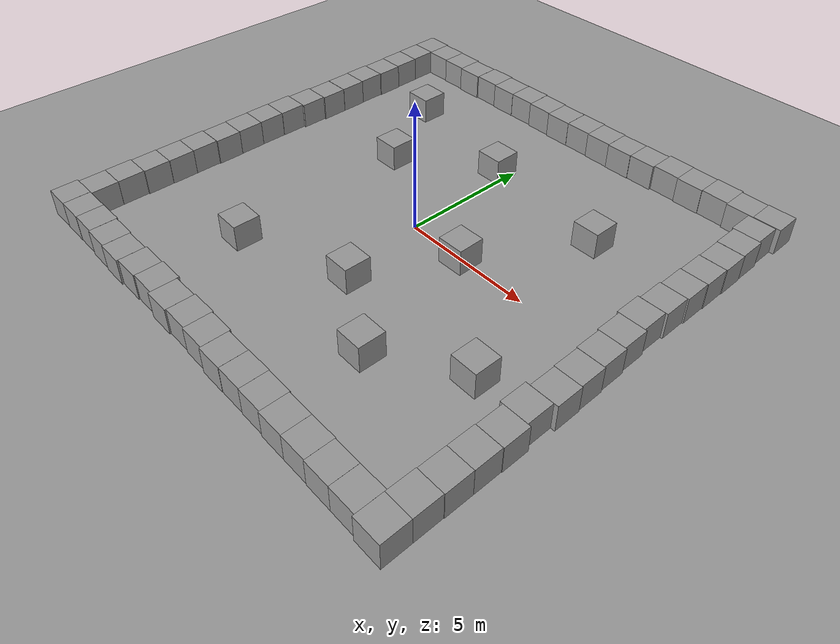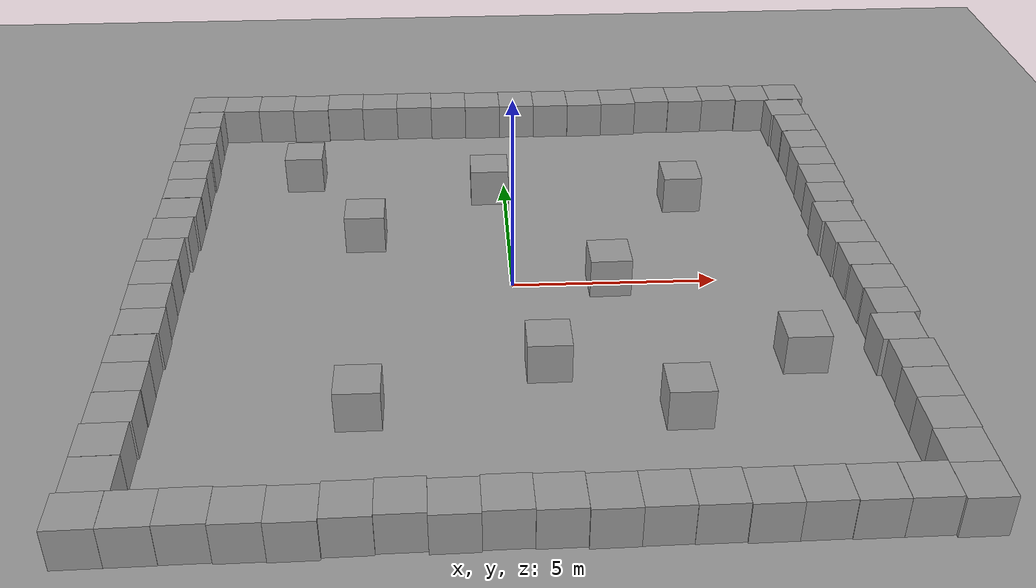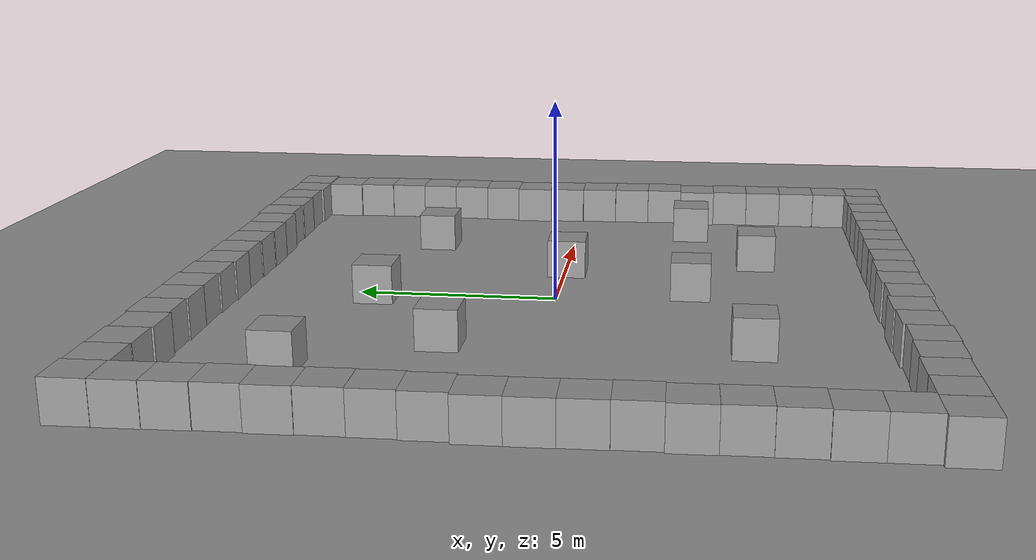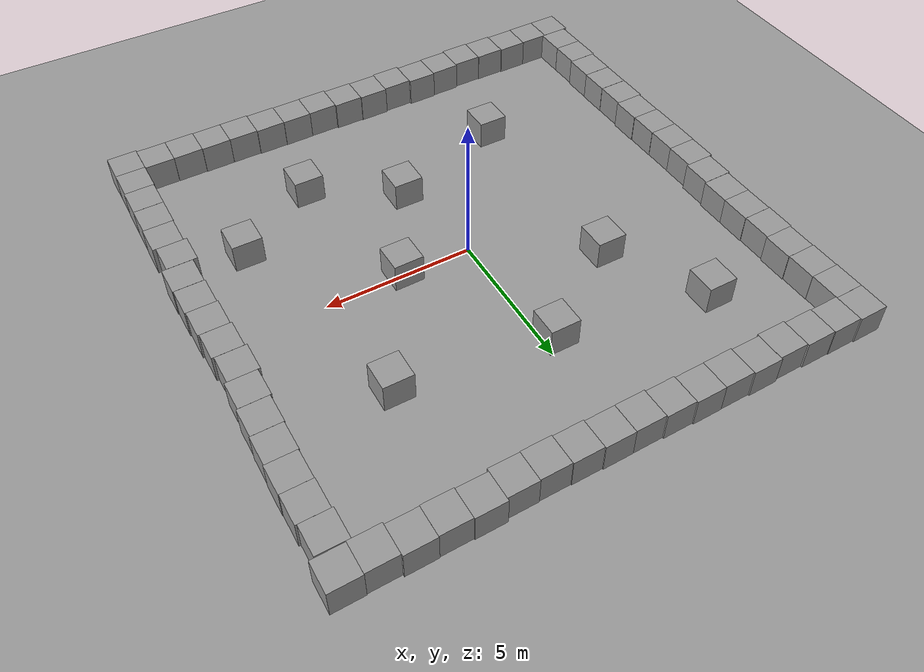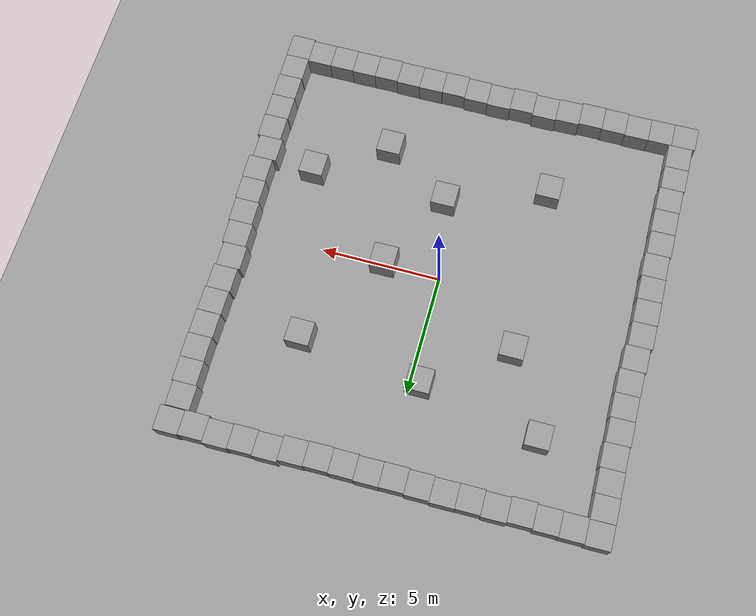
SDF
<sdf version="1.6">
 <world name="default">
  <light name="sun" type="directional">
   <pose>0 0 10 0 -0 0</pose>
   <diffuse>0.8 0.8 0.8 1</diffuse>
   <specular>0.2 0.2 0.2 1</specular>
   <attenuation>
    <range>1000</range>
    <constant>0.9</constant>
    <linear>0.01</linear>
    <quadratic>0.001</quadratic>
   </attenuation>
   <direction>0.5 0.1 -0.9</direction>
  </light>
  <scene><ambient>0.4 0.4 0.4 1</ambient><background>0.7 0.7 0.7 1</background><shadows>1</shadows></scene>
  <physics name="default_physics" default="0" type="ode">
   <max_step_size>0.01</max_step_size>
   <real_time_factor>1</real_time_factor>
   <real_time_update_rate>100</real_time_update_rate>
  </physics>
  <model name="ground_plane_0">
   <static>1</static>
   <link name="link">
    <collision name="collision">
     <geometry><plane><normal>0 0 1</normal><size>100 100</size></plane></geometry>
     <surface><friction><ode><mu>100</mu><mu2>50</mu2></ode></friction></surface>
    </collision>
    <visual name="visual">
     <cast_shadows>0</cast_shadows>
     <geometry><plane><normal>0 0 1</normal><size>100 100</size></plane></geometry>
     <material>
      <script><uri>file://media/materials/scripts/gazebo.material</uri><name>Gazebo/Grey</name></script>
     </material>
    </visual>
    <velocity_decay><linear>0</linear><angular>0</angular></velocity_decay>
   </link>
   <pose>0.497681 0 0 0 -0 0</pose>
  </model>
  <gravity>0 0 -9.8</gravity>
  <magnetic_field>6e-06 2.3e-05 -4.2e-05</magnetic_field>
  <atmosphere type="adiabatic"/>
  <spherical_coordinates>
   <surface_model>EARTH_WGS84</surface_model>
   <latitude_deg>0</latitude_deg>
   <longitude_deg>0</longitude_deg>
   <elevation>0</elevation>
   <heading_deg>0</heading_deg>
  </spherical_coordinates>
  <model name="unit_box">
   <pose>-3.65477 2.22328 0.499798 -0.000404 1e-06 2e-06</pose>
   <link name="link">
    <inertial>
     <mass>1</mass>
     <inertia>
      <ixx>0.166667</ixx>
      <ixy>0</ixy>
      <ixz>0</ixz>
      <iyy>0.166667</iyy>
      <iyz>0</iyz>
      <izz>0.166667</izz>
     </inertia>
    </inertial>
    <collision name="collision"><geometry><box><size>1 1 1</size></box></geometry></collision>
    <visual name="visual">
     <geometry><box><size>1 1 1</size></box></geometry>
     <material>
      <script><name>Gazebo/Grey</name><uri>file://media/materials/scripts/gazebo.material</uri></script>
     </material>
    </visual>
   </link>
  </model>
  <model name="unit_box_0">
   <pose>-3.49029 -4.82705 0.499798 -0.000404 1e-06 3e-06</pose>
   <link name="link">
    <inertial>
     <mass>1</mass>
     <inertia>
      <ixx>0.166667</ixx>
      <ixy>0</ixy>
      <ixz>0</ixz>
      <iyy>0.166667</iyy>
      <iyz>0</iyz>
      <izz>0.166667</izz>
     </inertia>
    </inertial>
    <collision name="collision"><geometry><box><size>1 1 1</size></box></geometry></collision>
    <visual name="visual">
     <geometry><box><size>1 1 1</size></box></geometry>
     <material>
      <script><name>Gazebo/Grey</name><uri>file://media/materials/scripts/gazebo.material</uri></script>
     </material>
    </visual>
   </link>
  </model>
  <model name="unit_box_1">
   <pose>4.69311 3.85443 0.499798 -0.000404 1e-06 3e-06</pose>
   <link name="link">
    <inertial>
     <mass>1</mass>
     <inertia>
      <ixx>0.166667</ixx>
      <ixy>0</ixy>
      <ixz>0</ixz>
      <iyy>0.166667</iyy>
      <iyz>0</iyz>
      <izz>0.166667</izz>
     </inertia>
    </inertial>
    <collision name="collision"><geometry><box><size>1 1 1</size></box></geometry></collision>
    <visual name="visual">
     <geometry><box><size>1 1 1</size></box></geometry>
     <material>
      <script><name>Gazebo/Grey</name><uri>file://media/materials/scripts/gazebo.material</uri></script>
     </material>
    </visual>
   </link>
  </model>
  <model name="unit_box_2">
   <pose>6.34 -3.32422 0.499798 -0.000404 1e-06 3e-06</pose>
   <link name="link">
    <inertial>
     <mass>1</mass>
     <inertia>
      <ixx>0.166667</ixx>
      <ixy>0</ixy>
      <ixz>0</ixz>
      <iyy>0.166667</iyy>
      <iyz>0</iyz>
      <izz>0.166667</izz>
     </inertia>
    </inertial>
    <collision name="collision"><geometry><box><size>1 1 1</size></box></geometry></collision>
    <visual name="visual">
     <geometry><box><size>1 1 1</size></box></geometry>
     <material>
      <script><name>Gazebo/Grey</name><uri>file://media/materials/scripts/gazebo.material</uri></script>
     </material>
    </visual>
   </link>
  </model>
  <model name="unit_box_3">
   <pose>-8.50373 8.5135 0.5 0 -0 0.012994</pose>
   <link name="link">
    <inertial>
     <mass>1</mass>
     <inertia>
      <ixx>0.166667</ixx>
      <ixy>0</ixy>
      <ixz>0</ixz>
      <iyy>0.166667</iyy>
      <iyz>0</iyz>
      <izz>0.166667</izz>
     </inertia>
    </inertial>
    <collision name="collision"><geometry><box><size>1 1 1</size></box></geometry></collision>
    <visual name="visual">
     <geometry><box><size>1 1 1</size></box></geometry>
     <material>
      <script><name>Gazebo/Grey</name><uri>file://media/materials/scripts/gazebo.material</uri></script>
     </material>
    </visual>
   </link>
  </model>
  <model name="unit_box_4">
   <pose>-8.4892 7.51155 0.49902 0 -0 0.016327</pose>
   <link name="link">
    <inertial>
     <mass>1</mass>
     <inertia>
      <ixx>0.166667</ixx>
      <ixy>0</ixy>
      <ixz>0</ixz>
      <iyy>0.166667</iyy>
      <iyz>0</iyz>
      <izz>0.166667</izz>
     </inertia>
    </inertial>
    <collision name="collision"><geometry><box><size>1 1 1</size></box></geometry></collision>
    <visual name="visual">
     <geometry><box><size>1 1 1</size></box></geometry>
     <material>
      <script><name>Gazebo/Grey</name><uri>file://media/materials/scripts/gazebo.material</uri></script>
     </material>
    </visual>
   </link>
  </model>
  <model name="unit_box_5">
   <pose>-8.46021 6.51163 0.49907 -0 -0.0001 0.015862</pose>
   <link name="link">
    <inertial>
     <mass>1</mass>
     <inertia>
      <ixx>0.166667</ixx>
      <ixy>0</ixy>
      <ixz>0</ixz>
      <iyy>0.166667</iyy>
      <iyz>0</iyz>
      <izz>0.166667</izz>
     </inertia>
    </inertial>
    <collision name="collision"><geometry><box><size>1 1 1</size></box></geometry></collision>
    <visual name="visual">
     <geometry><box><size>1 1 1</size></box></geometry>
     <material>
      <script><name>Gazebo/Grey</name><uri>file://media/materials/scripts/gazebo.material</uri></script>
     </material>
    </visual>
   </link>
  </model>
  <model name="unit_box_6">
   <pose>-8.41959 5.5117 0.49967 0 -0.00066 0.016763</pose>
   <link name="link">
    <inertial>
     <mass>1</mass>
     <inertia>
      <ixx>0.166667</ixx>
      <ixy>0</ixy>
      <ixz>0</ixz>
      <iyy>0.166667</iyy>
      <iyz>0</iyz>
      <izz>0.166667</izz>
     </inertia>
    </inertial>
    <collision name="collision"><geometry><box><size>1 1 1</size></box></geometry></collision>
    <visual name="visual">
     <geometry><box><size>1 1 1</size></box></geometry>
     <material>
      <script><name>Gazebo/Grey</name><uri>file://media/materials/scripts/gazebo.material</uri></script>
     </material>
    </visual>
   </link>
  </model>
  <model name="unit_box_6_clone">
   <pose>-8.43879 4.51123 0.49907 0 0.0001 0.016757</pose>
   <link name="link">
    <inertial>
     <mass>1</mass>
     <inertia>
      <ixx>0.166667</ixx>
      <ixy>0</ixy>
      <ixz>0</ixz>
      <iyy>0.166667</iyy>
      <iyz>0</iyz>
      <izz>0.166667</izz>
     </inertia>
    </inertial>
    <collision name="collision"><geometry><box><size>1 1 1</size></box></geometry></collision>
    <visual name="visual">
     <geometry><box><size>1 1 1</size></box></geometry>
     <material>
      <script><name>Gazebo/Grey</name><uri>file://media/materials/scripts/gazebo.material</uri></script>
     </material>
    </visual>
   </link>
  </model>
  <model name="unit_box_6_clone_0">
   <pose>-8.40418 3.51116 0.5 0 -0 0.016663</pose>
   <link name="link">
    <inertial>
     <mass>1</mass>
     <inertia>
      <ixx>0.166667</ixx>
      <ixy>0</ixy>
      <ixz>0</ixz>
      <iyy>0.166667</iyy>
      <iyz>0</iyz>
      <izz>0.166667</izz>
     </inertia>
    </inertial>
    <collision name="collision"><geometry><box><size>1 1 1</size></box></geometry></collision>
    <visual name="visual">
     <geometry><box><size>1 1 1</size></box></geometry>
     <material>
      <script><name>Gazebo/Grey</name><uri>file://media/materials/scripts/gazebo.material</uri></script>
     </material>
    </visual>
   </link>
  </model>
  <model name="unit_box_6_clone_1">
   <pose>-8.39566 2.51115 0.49477 -0 -0.00066 0.016663</pose>
   <link name="link">
    <inertial>
     <mass>1</mass>
     <inertia>
      <ixx>0.166667</ixx>
      <ixy>0</ixy>
      <ixz>0</ixz>
      <iyy>0.166667</iyy>
      <iyz>0</iyz>
      <izz>0.166667</izz>
     </inertia>
    </inertial>
    <collision name="collision"><geometry><box><size>1 1 1</size></box></geometry></collision>
    <visual name="visual">
     <geometry><box><size>1 1 1</size></box></geometry>
     <material>
      <script><name>Gazebo/Grey</name><uri>file://media/materials/scripts/gazebo.material</uri></script>
     </material>
    </visual>
   </link>
  </model>
  <model name="unit_box_6_clone_2">
   <pose>-8.43005 1.51012 0.49912 0 -0 0.016926</pose>
   <link name="link">
    <inertial>
     <mass>1</mass>
     <inertia>
      <ixx>0.166667</ixx>
      <ixy>0</ixy>
      <ixz>0</ixz>
      <iyy>0.166667</iyy>
      <iyz>0</iyz>
      <izz>0.166667</izz>
     </inertia>
    </inertial>
    <collision name="collision"><geometry><box><size>1 1 1</size></box></geometry></collision>
    <visual name="visual">
     <geometry><box><size>1 1 1</size></box></geometry>
     <material>
      <script><name>Gazebo/Grey</name><uri>file://media/materials/scripts/gazebo.material</uri></script>
     </material>
    </visual>
   </link>
  </model>
  <model name="unit_box_6_clone_3">
   <pose>-8.49539 0.508843 0.49912 0 -0 0.016941</pose>
   <link name="link">
    <inertial>
     <mass>1</mass>
     <inertia>
      <ixx>0.166667</ixx>
      <ixy>0</ixy>
      <ixz>0</ixz>
      <iyy>0.166667</iyy>
      <iyz>0</iyz>
      <izz>0.166667</izz>
     </inertia>
    </inertial>
    <collision name="collision"><geometry><box><size>1 1 1</size></box></geometry></collision>
    <visual name="visual">
     <geometry><box><size>1 1 1</size></box></geometry>
     <material>
      <script><name>Gazebo/Grey</name><uri>file://media/materials/scripts/gazebo.material</uri></script>
     </material>
    </visual>
   </link>
  </model>
  <model name="unit_box_6_clone_4">
   <pose>-8.48774 -0.49148 0.49912 0 -0 0.017428</pose>
   <link name="link">
    <inertial>
     <mass>1</mass>
     <inertia>
      <ixx>0.166667</ixx>
      <ixy>0</ixy>
      <ixz>0</ixz>
      <iyy>0.166667</iyy>
      <iyz>0</iyz>
      <izz>0.166667</izz>
     </inertia>
    </inertial>
    <collision name="collision"><geometry><box><size>1 1 1</size></box></geometry></collision>
    <visual name="visual">
     <geometry><box><size>1 1 1</size></box></geometry>
     <material>
      <script><name>Gazebo/Grey</name><uri>file://media/materials/scripts/gazebo.material</uri></script>
     </material>
    </visual>
   </link>
  </model>
  <model name="unit_box_6_clone_5">
   <pose>-8.45919 -1.49116 0.49912 0 -0 0.017447</pose>
   <link name="link">
    <inertial>
     <mass>1</mass>
     <inertia>
      <ixx>0.166667</ixx>
      <ixy>0</ixy>
      <ixz>0</ixz>
      <iyy>0.166667</iyy>
      <iyz>0</iyz>
      <izz>0.166667</izz>
     </inertia>
    </inertial>
    <collision name="collision"><geometry><box><size>1 1 1</size></box></geometry></collision>
    <visual name="visual">
     <geometry><box><size>1 1 1</size></box></geometry>
     <material>
      <script><name>Gazebo/Grey</name><uri>file://media/materials/scripts/gazebo.material</uri></script>
     </material>
    </visual>
   </link>
  </model>
  <model name="unit_box_6_clone_6">
   <pose>-8.42461 -2.49077 0.49912 0 -0 0.017527</pose>
   <link name="link">
    <inertial>
     <mass>1</mass>
     <inertia>
      <ixx>0.166667</ixx>
      <ixy>0</ixy>
      <ixz>0</ixz>
      <iyy>0.166667</iyy>
      <iyz>0</iyz>
      <izz>0.166667</izz>
     </inertia>
    </inertial>
    <collision name="collision"><geometry><box><size>1 1 1</size></box></geometry></collision>
    <visual name="visual">
     <geometry><box><size>1 1 1</size></box></geometry>
     <material>
      <script><name>Gazebo/Grey</name><uri>file://media/materials/scripts/gazebo.material</uri></script>
     </material>
    </visual>
   </link>
  </model>
  <model name="unit_box_6_clone_7">
   <pose>-8.45409 -3.49156 0.4952 0 -0 0.017732</pose>
   <link name="link">
    <inertial>
     <mass>1</mass>
     <inertia>
      <ixx>0.166667</ixx>
      <ixy>0</ixy>
      <ixz>0</ixz>
      <iyy>0.166667</iyy>
      <iyz>0</iyz>
      <izz>0.166667</izz>
     </inertia>
    </inertial>
    <collision name="collision"><geometry><box><size>1 1 1</size></box></geometry></collision>
    <visual name="visual">
     <geometry><box><size>1 1 1</size></box></geometry>
     <material>
      <script><name>Gazebo/Grey</name><uri>file://media/materials/scripts/gazebo.material</uri></script>
     </material>
    </visual>
   </link>
  </model>
  <model name="unit_box_6_clone_8">
   <pose>-8.42755 -4.49181 0.49967 -0.00066 0 0.018387</pose>
   <link name="link">
    <inertial>
     <mass>1</mass>
     <inertia>
      <ixx>0.166667</ixx>
      <ixy>0</ixy>
      <ixz>0</ixz>
      <iyy>0.166667</iyy>
      <iyz>0</iyz>
      <izz>0.166667</izz>
     </inertia>
    </inertial>
    <collision name="collision"><geometry><box><size>1 1 1</size></box></geometry></collision>
    <visual name="visual">
     <geometry><box><size>1 1 1</size></box></geometry>
     <material>
      <script><name>Gazebo/Grey</name><uri>file://media/materials/scripts/gazebo.material</uri></script>
     </material>
    </visual>
   </link>
  </model>
  <model name="unit_box_6_clone_9">
   <pose>-8.42184 -5.49251 0.49967 -0 -0.00066 0.018525</pose>
   <link name="link">
    <inertial>
     <mass>1</mass>
     <inertia>
      <ixx>0.166667</ixx>
      <ixy>0</ixy>
      <ixz>0</ixz>
      <iyy>0.166667</iyy>
      <iyz>0</iyz>
      <izz>0.166667</izz>
     </inertia>
    </inertial>
    <collision name="collision"><geometry><box><size>1 1 1</size></box></geometry></collision>
    <visual name="visual">
     <geometry><box><size>1 1 1</size></box></geometry>
     <material>
      <script><name>Gazebo/Grey</name><uri>file://media/materials/scripts/gazebo.material</uri></script>
     </material>
    </visual>
   </link>
  </model>
  <model name="unit_box_6_clone_10">
   <pose>-8.44573 -6.49318 0.5 0 -0 0.018563</pose>
   <link name="link">
    <inertial>
     <mass>1</mass>
     <inertia>
      <ixx>0.166667</ixx>
      <ixy>0</ixy>
      <ixz>0</ixz>
      <iyy>0.166667</iyy>
      <iyz>0</iyz>
      <izz>0.166667</izz>
     </inertia>
    </inertial>
    <collision name="collision"><geometry><box><size>1 1 1</size></box></geometry></collision>
    <visual name="visual">
     <geometry><box><size>1 1 1</size></box></geometry>
     <material>
      <script><name>Gazebo/Grey</name><uri>file://media/materials/scripts/gazebo.material</uri></script>
     </material>
    </visual>
   </link>
  </model>
  <model name="unit_box_6_clone_11">
   <pose>-8.42687 -7.49407 0.49907 -0 -0.0001 0.016759</pose>
   <link name="link">
    <inertial>
     <mass>1</mass>
     <inertia>
      <ixx>0.166667</ixx>
      <ixy>0</ixy>
      <ixz>0</ixz>
      <iyy>0.166667</iyy>
      <iyz>0</iyz>
      <izz>0.166667</izz>
     </inertia>
    </inertial>
    <collision name="collision"><geometry><box><size>1 1 1</size></box></geometry></collision>
    <visual name="visual">
     <geometry><box><size>1 1 1</size></box></geometry>
     <material>
      <script><name>Gazebo/Grey</name><uri>file://media/materials/scripts/gazebo.material</uri></script>
     </material>
    </visual>
   </link>
  </model>
  <model name="unit_box_6_clone_12">
   <pose>-8.51275 -8.49594 0.49967 0 -0.00066 0.016103</pose>
   <link name="link">
    <inertial>
     <mass>1</mass>
     <inertia>
      <ixx>0.166667</ixx>
      <ixy>0</ixy>
      <ixz>0</ixz>
      <iyy>0.166667</iyy>
      <iyz>0</iyz>
      <izz>0.166667</izz>
     </inertia>
    </inertial>
    <collision name="collision"><geometry><box><size>1 1 1</size></box></geometry></collision>
    <visual name="visual">
     <geometry><box><size>1 1 1</size></box></geometry>
     <material>
      <script><name>Gazebo/Grey</name><uri>file://media/materials/scripts/gazebo.material</uri></script>
     </material>
    </visual>
   </link>
  </model>
  <model name="unit_box_6_clone_13">
   <pose>-7.5114 -8.48046 0.5 0 -0 0.014198</pose>
   <link name="link">
    <inertial>
     <mass>1</mass>
     <inertia>
      <ixx>0.166667</ixx>
      <ixy>0</ixy>
      <ixz>0</ixz>
      <iyy>0.166667</iyy>
      <iyz>0</iyz>
      <izz>0.166667</izz>
     </inertia>
    </inertial>
    <collision name="collision"><geometry><box><size>1 1 1</size></box></geometry></collision>
    <visual name="visual">
     <geometry><box><size>1 1 1</size></box></geometry>
     <material>
      <script><name>Gazebo/Grey</name><uri>file://media/materials/scripts/gazebo.material</uri></script>
     </material>
    </visual>
   </link>
  </model>
  <model name="unit_box_6_clone_14">
   <pose>-6.5111 -8.45993 0.49967 -0.00066 -0 0.013326</pose>
   <link name="link">
    <inertial>
     <mass>1</mass>
     <inertia>
      <ixx>0.166667</ixx>
      <ixy>0</ixy>
      <ixz>0</ixz>
      <iyy>0.166667</iyy>
      <iyz>0</iyz>
      <izz>0.166667</izz>
     </inertia>
    </inertial>
    <collision name="collision"><geometry><box><size>1 1 1</size></box></geometry></collision>
    <visual name="visual">
     <geometry><box><size>1 1 1</size></box></geometry>
     <material>
      <script><name>Gazebo/Grey</name><uri>file://media/materials/scripts/gazebo.material</uri></script>
     </material>
    </visual>
   </link>
  </model>
  <model name="unit_box_6_clone_15">
   <pose>-5.50942 -8.4807 0.49967 -0.00066 0 0.012363</pose>
   <link name="link">
    <inertial>
     <mass>1</mass>
     <inertia>
      <ixx>0.166667</ixx>
      <ixy>0</ixy>
      <ixz>0</ixz>
      <iyy>0.166667</iyy>
      <iyz>0</iyz>
      <izz>0.166667</izz>
     </inertia>
    </inertial>
    <collision name="collision"><geometry><box><size>1 1 1</size></box></geometry></collision>
    <visual name="visual">
     <geometry><box><size>1 1 1</size></box></geometry>
     <material>
      <script><name>Gazebo/Grey</name><uri>file://media/materials/scripts/gazebo.material</uri></script>
     </material>
    </visual>
   </link>
  </model>
  <model name="unit_box_6_clone_16">
   <pose>-4.50873 -8.4928 0.49967 -0.00066 -0 0.012463</pose>
   <link name="link">
    <inertial>
     <mass>1</mass>
     <inertia>
      <ixx>0.166667</ixx>
      <ixy>0</ixy>
      <ixz>0</ixz>
      <iyy>0.166667</iyy>
      <iyz>0</iyz>
      <izz>0.166667</izz>
     </inertia>
    </inertial>
    <collision name="collision"><geometry><box><size>1 1 1</size></box></geometry></collision>
    <visual name="visual">
     <geometry><box><size>1 1 1</size></box></geometry>
     <material>
      <script><name>Gazebo/Grey</name><uri>file://media/materials/scripts/gazebo.material</uri></script>
     </material>
    </visual>
   </link>
  </model>
  <model name="unit_box_6_clone_17">
   <pose>-3.50928 -8.42035 0.49967 -0.00066 -0 0.013015</pose>
   <link name="link">
    <inertial>
     <mass>1</mass>
     <inertia>
      <ixx>0.166667</ixx>
      <ixy>0</ixy>
      <ixz>0</ixz>
      <iyy>0.166667</iyy>
      <iyz>0</iyz>
      <izz>0.166667</izz>
     </inertia>
    </inertial>
    <collision name="collision"><geometry><box><size>1 1 1</size></box></geometry></collision>
    <visual name="visual">
     <geometry><box><size>1 1 1</size></box></geometry>
     <material>
      <script><name>Gazebo/Grey</name><uri>file://media/materials/scripts/gazebo.material</uri></script>
     </material>
    </visual>
   </link>
  </model>
  <model name="unit_box_6_clone_18">
   <pose>-2.50976 -8.37211 0.49967 -0.00066 -0 0.012913</pose>
   <link name="link">
    <inertial>
     <mass>1</mass>
     <inertia>
      <ixx>0.166667</ixx>
      <ixy>0</ixy>
      <ixz>0</ixz>
      <iyy>0.166667</iyy>
      <iyz>0</iyz>
      <izz>0.166667</izz>
     </inertia>
    </inertial>
    <collision name="collision"><geometry><box><size>1 1 1</size></box></geometry></collision>
    <visual name="visual">
     <geometry><box><size>1 1 1</size></box></geometry>
     <material>
      <script><name>Gazebo/Grey</name><uri>file://media/materials/scripts/gazebo.material</uri></script>
     </material>
    </visual>
   </link>
  </model>
  <model name="unit_box_6_clone_19">
   <pose>-1.5086 -8.43542 0.49967 -0.00066 0 0.012875</pose>
   <link name="link">
    <inertial>
     <mass>1</mass>
     <inertia>
      <ixx>0.166667</ixx>
      <ixy>0</ixy>
      <ixz>0</ixz>
      <iyy>0.166667</iyy>
      <iyz>0</iyz>
      <izz>0.166667</izz>
     </inertia>
    </inertial>
    <collision name="collision"><geometry><box><size>1 1 1</size></box></geometry></collision>
    <visual name="visual">
     <geometry><box><size>1 1 1</size></box></geometry>
     <material>
      <script><name>Gazebo/Grey</name><uri>file://media/materials/scripts/gazebo.material</uri></script>
     </material>
    </visual>
   </link>
  </model>
  <model name="unit_box_6_clone_20">
   <pose>-0.50914 -8.37609 0.49907 0.0001 -0 0.012675</pose>
   <link name="link">
    <inertial>
     <mass>1</mass>
     <inertia>
      <ixx>0.166667</ixx>
      <ixy>0</ixy>
      <ixz>0</ixz>
      <iyy>0.166667</iyy>
      <iyz>0</iyz>
      <izz>0.166667</izz>
     </inertia>
    </inertial>
    <collision name="collision"><geometry><box><size>1 1 1</size></box></geometry></collision>
    <visual name="visual">
     <geometry><box><size>1 1 1</size></box></geometry>
     <material>
      <script><name>Gazebo/Grey</name><uri>file://media/materials/scripts/gazebo.material</uri></script>
     </material>
    </visual>
   </link>
  </model>
  <model name="unit_box_6_clone_21">
   <pose>0.491202 -8.39552 0.49912 0 -0 0.012683</pose>
   <link name="link">
    <inertial>
     <mass>1</mass>
     <inertia>
      <ixx>0.166667</ixx>
      <ixy>0</ixy>
      <ixz>0</ixz>
      <iyy>0.166667</iyy>
      <iyz>0</iyz>
      <izz>0.166667</izz>
     </inertia>
    </inertial>
    <collision name="collision"><geometry><box><size>1 1 1</size></box></geometry></collision>
    <visual name="visual">
     <geometry><box><size>1 1 1</size></box></geometry>
     <material>
      <script><name>Gazebo/Grey</name><uri>file://media/materials/scripts/gazebo.material</uri></script>
     </material>
    </visual>
   </link>
  </model>
  <model name="unit_box_6_clone_22">
   <pose>1.49281 -8.43807 0.49967 -0.00066 -0 0.012871</pose>
   <link name="link">
    <inertial>
     <mass>1</mass>
     <inertia>
      <ixx>0.166667</ixx>
      <ixy>0</ixy>
      <ixz>0</ixz>
      <iyy>0.166667</iyy>
      <iyz>0</iyz>
      <izz>0.166667</izz>
     </inertia>
    </inertial>
    <collision name="collision"><geometry><box><size>1 1 1</size></box></geometry></collision>
    <visual name="visual">
     <geometry><box><size>1 1 1</size></box></geometry>
     <material>
      <script><name>Gazebo/Grey</name><uri>file://media/materials/scripts/gazebo.material</uri></script>
     </material>
    </visual>
   </link>
  </model>
  <model name="unit_box_6_clone_23">
   <pose>2.49265 -8.41676 0.49912 0 -0 0.012844</pose>
   <link name="link">
    <inertial>
     <mass>1</mass>
     <inertia>
      <ixx>0.166667</ixx>
      <ixy>0</ixy>
      <ixz>0</ixz>
      <iyy>0.166667</iyy>
      <iyz>0</iyz>
      <izz>0.166667</izz>
     </inertia>
    </inertial>
    <collision name="collision"><geometry><box><size>1 1 1</size></box></geometry></collision>
    <visual name="visual">
     <geometry><box><size>1 1 1</size></box></geometry>
     <material>
      <script><name>Gazebo/Grey</name><uri>file://media/materials/scripts/gazebo.material</uri></script>
     </material>
    </visual>
   </link>
  </model>
  <model name="unit_box_6_clone_24">
   <pose>3.49296 -8.41698 0.49912 0 -0 0.012396</pose>
   <link name="link">
    <inertial>
     <mass>1</mass>
     <inertia>
      <ixx>0.166667</ixx>
      <ixy>0</ixy>
      <ixz>0</ixz>
      <iyy>0.166667</iyy>
      <iyz>0</iyz>
      <izz>0.166667</izz>
     </inertia>
    </inertial>
    <collision name="collision"><geometry><box><size>1 1 1</size></box></geometry></collision>
    <visual name="visual">
     <geometry><box><size>1 1 1</size></box></geometry>
     <material>
      <script><name>Gazebo/Grey</name><uri>file://media/materials/scripts/gazebo.material</uri></script>
     </material>
    </visual>
   </link>
  </model>
  <model name="unit_box_6_clone_25">
   <pose>4.49338 -8.44032 0.49967 -0.00066 0 0.012279</pose>
   <link name="link">
    <inertial>
     <mass>1</mass>
     <inertia>
      <ixx>0.166667</ixx>
      <ixy>0</ixy>
      <ixz>0</ixz>
      <iyy>0.166667</iyy>
      <iyz>0</iyz>
      <izz>0.166667</izz>
     </inertia>
    </inertial>
    <collision name="collision"><geometry><box><size>1 1 1</size></box></geometry></collision>
    <visual name="visual">
     <geometry><box><size>1 1 1</size></box></geometry>
     <material>
      <script><name>Gazebo/Grey</name><uri>file://media/materials/scripts/gazebo.material</uri></script>
     </material>
    </visual>
   </link>
  </model>
  <model name="unit_box_6_clone_26">
   <pose>5.49374 -8.42826 0.5 0 -0 0.011744</pose>
   <link name="link">
    <inertial>
     <mass>1</mass>
     <inertia>
      <ixx>0.166667</ixx>
      <ixy>0</ixy>
      <ixz>0</ixz>
      <iyy>0.166667</iyy>
      <iyz>0</iyz>
      <izz>0.166667</izz>
     </inertia>
    </inertial>
    <collision name="collision"><geometry><box><size>1 1 1</size></box></geometry></collision>
    <visual name="visual">
     <geometry><box><size>1 1 1</size></box></geometry>
     <material>
      <script><name>Gazebo/Grey</name><uri>file://media/materials/scripts/gazebo.material</uri></script>
     </material>
    </visual>
   </link>
  </model>
  <model name="unit_box_6_clone_27">
   <pose>6.49438 -8.43563 0.49967 0.00066 -0 0.010807</pose>
   <link name="link">
    <inertial>
     <mass>1</mass>
     <inertia>
      <ixx>0.166667</ixx>
      <ixy>0</ixy>
      <ixz>0</ixz>
      <iyy>0.166667</iyy>
      <iyz>0</iyz>
      <izz>0.166667</izz>
     </inertia>
    </inertial>
    <collision name="collision"><geometry><box><size>1 1 1</size></box></geometry></collision>
    <visual name="visual">
     <geometry><box><size>1 1 1</size></box></geometry>
     <material>
      <script><name>Gazebo/Grey</name><uri>file://media/materials/scripts/gazebo.material</uri></script>
     </material>
    </visual>
   </link>
  </model>
  <model name="unit_box_6_clone_28">
   <pose>7.49583 -8.42766 0.499802 0.000397 0 0.007958</pose>
   <link name="link">
    <inertial>
     <mass>1</mass>
     <inertia>
      <ixx>0.166667</ixx>
      <ixy>0</ixy>
      <ixz>0</ixz>
      <iyy>0.166667</iyy>
      <iyz>0</iyz>
      <izz>0.166667</izz>
     </inertia>
    </inertial>
    <collision name="collision"><geometry><box><size>1 1 1</size></box></geometry></collision>
    <visual name="visual">
     <geometry><box><size>1 1 1</size></box></geometry>
     <material>
      <script><name>Gazebo/Grey</name><uri>file://media/materials/scripts/gazebo.material</uri></script>
     </material>
    </visual>
   </link>
  </model>
  <model name="unit_box_6_clone_29">
   <pose>8.49675 -8.48762 0.499716 0.000569 -0 0.007141</pose>
   <link name="link">
    <inertial>
     <mass>1</mass>
     <inertia>
      <ixx>0.166667</ixx>
      <ixy>0</ixy>
      <ixz>0</ixz>
      <iyy>0.166667</iyy>
      <iyz>0</iyz>
      <izz>0.166667</izz>
     </inertia>
    </inertial>
    <collision name="collision"><geometry><box><size>1 1 1</size></box></geometry></collision>
    <visual name="visual">
     <geometry><box><size>1 1 1</size></box></geometry>
     <material>
      <script><name>Gazebo/Grey</name><uri>file://media/materials/scripts/gazebo.material</uri></script>
     </material>
    </visual>
   </link>
  </model>
  <model name="unit_box_6_clone_30">
   <pose>8.49046 -7.48692 0.49967 0 -0.00066 0.00699</pose>
   <link name="link">
    <inertial>
     <mass>1</mass>
     <inertia>
      <ixx>0.166667</ixx>
      <ixy>0</ixy>
      <ixz>0</ixz>
      <iyy>0.166667</iyy>
      <iyz>0</iyz>
      <izz>0.166667</izz>
     </inertia>
    </inertial>
    <collision name="collision"><geometry><box><size>1 1 1</size></box></geometry></collision>
    <visual name="visual">
     <geometry><box><size>1 1 1</size></box></geometry>
     <material>
      <script><name>Gazebo/Grey</name><uri>file://media/materials/scripts/gazebo.material</uri></script>
     </material>
    </visual>
   </link>
  </model>
  <model name="unit_box_6_clone_31">
   <pose>8.50082 -6.48634 0.5 0 -0 0.006865</pose>
   <link name="link">
    <inertial>
     <mass>1</mass>
     <inertia>
      <ixx>0.166667</ixx>
      <ixy>0</ixy>
      <ixz>0</ixz>
      <iyy>0.166667</iyy>
      <iyz>0</iyz>
      <izz>0.166667</izz>
     </inertia>
    </inertial>
    <collision name="collision"><geometry><box><size>1 1 1</size></box></geometry></collision>
    <visual name="visual">
     <geometry><box><size>1 1 1</size></box></geometry>
     <material>
      <script><name>Gazebo/Grey</name><uri>file://media/materials/scripts/gazebo.material</uri></script>
     </material>
    </visual>
   </link>
  </model>
  <model name="unit_box_6_clone_32">
   <pose>8.49632 -5.48627 0.49907 -0 0.0001 0.006826</pose>
   <link name="link">
    <inertial>
     <mass>1</mass>
     <inertia>
      <ixx>0.166667</ixx>
      <ixy>0</ixy>
      <ixz>0</ixz>
      <iyy>0.166667</iyy>
      <iyz>0</iyz>
      <izz>0.166667</izz>
     </inertia>
    </inertial>
    <collision name="collision"><geometry><box><size>1 1 1</size></box></geometry></collision>
    <visual name="visual">
     <geometry><box><size>1 1 1</size></box></geometry>
     <material>
      <script><name>Gazebo/Grey</name><uri>file://media/materials/scripts/gazebo.material</uri></script>
     </material>
    </visual>
   </link>
  </model>
  <model name="unit_box_6_clone_33">
   <pose>8.50741 -4.48512 0.49967 0 0.00066 0.007451</pose>
   <link name="link">
    <inertial>
     <mass>1</mass>
     <inertia>
      <ixx>0.166667</ixx>
      <ixy>0</ixy>
      <ixz>0</ixz>
      <iyy>0.166667</iyy>
      <iyz>0</iyz>
      <izz>0.166667</izz>
     </inertia>
    </inertial>
    <collision name="collision"><geometry><box><size>1 1 1</size></box></geometry></collision>
    <visual name="visual">
     <geometry><box><size>1 1 1</size></box></geometry>
     <material>
      <script><name>Gazebo/Grey</name><uri>file://media/materials/scripts/gazebo.material</uri></script>
     </material>
    </visual>
   </link>
  </model>
  <model name="unit_box_6_clone_34">
   <pose>8.3915 -3.48582 0.5 0 -0 0.007624</pose>
   <link name="link">
    <inertial>
     <mass>1</mass>
     <inertia>
      <ixx>0.166667</ixx>
      <ixy>0</ixy>
      <ixz>0</ixz>
      <iyy>0.166667</iyy>
      <iyz>0</iyz>
      <izz>0.166667</izz>
     </inertia>
    </inertial>
    <collision name="collision"><geometry><box><size>1 1 1</size></box></geometry></collision>
    <visual name="visual">
     <geometry><box><size>1 1 1</size></box></geometry>
     <material>
      <script><name>Gazebo/Grey</name><uri>file://media/materials/scripts/gazebo.material</uri></script>
     </material>
    </visual>
   </link>
  </model>
  <model name="unit_box_6_clone_35">
   <pose>8.5333 -2.48379 0.49967 -0.00066 0 0.008146</pose>
   <link name="link">
    <inertial>
     <mass>1</mass>
     <inertia>
      <ixx>0.166667</ixx>
      <ixy>0</ixy>
      <ixz>0</ixz>
      <iyy>0.166667</iyy>
      <iyz>0</iyz>
      <izz>0.166667</izz>
     </inertia>
    </inertial>
    <collision name="collision"><geometry><box><size>1 1 1</size></box></geometry></collision>
    <visual name="visual">
     <geometry><box><size>1 1 1</size></box></geometry>
     <material>
      <script><name>Gazebo/Grey</name><uri>file://media/materials/scripts/gazebo.material</uri></script>
     </material>
    </visual>
   </link>
  </model>
  <model name="unit_box_6_clone_36">
   <pose>8.49922 -1.48428 0.49716 0 -0 0.008124</pose>
   <link name="link">
    <inertial>
     <mass>1</mass>
     <inertia>
      <ixx>0.166667</ixx>
      <ixy>0</ixy>
      <ixz>0</ixz>
      <iyy>0.166667</iyy>
      <iyz>0</iyz>
      <izz>0.166667</izz>
     </inertia>
    </inertial>
    <collision name="collision"><geometry><box><size>1 1 1</size></box></geometry></collision>
    <visual name="visual">
     <geometry><box><size>1 1 1</size></box></geometry>
     <material>
      <script><name>Gazebo/Grey</name><uri>file://media/materials/scripts/gazebo.material</uri></script>
     </material>
    </visual>
   </link>
  </model>
  <model name="unit_box_6_clone_37">
   <pose>8.45647 -0.484569 0.49907 -0 0.0001 0.008127</pose>
   <link name="link">
    <inertial>
     <mass>1</mass>
     <inertia>
      <ixx>0.166667</ixx>
      <ixy>0</ixy>
      <ixz>0</ixz>
      <iyy>0.166667</iyy>
      <iyz>0</iyz>
      <izz>0.166667</izz>
     </inertia>
    </inertial>
    <collision name="collision"><geometry><box><size>1 1 1</size></box></geometry></collision>
    <visual name="visual">
     <geometry><box><size>1 1 1</size></box></geometry>
     <material>
      <script><name>Gazebo/Grey</name><uri>file://media/materials/scripts/gazebo.material</uri></script>
     </material>
    </visual>
   </link>
  </model>
  <model name="unit_box_6_clone_38">
   <pose>8.39569 0.515173 0.49907 0.0001 -0 0.008341</pose>
   <link name="link">
    <inertial>
     <mass>1</mass>
     <inertia>
      <ixx>0.166667</ixx>
      <ixy>0</ixy>
      <ixz>0</ixz>
      <iyy>0.166667</iyy>
      <iyz>0</iyz>
      <izz>0.166667</izz>
     </inertia>
    </inertial>
    <collision name="collision"><geometry><box><size>1 1 1</size></box></geometry></collision>
    <visual name="visual">
     <geometry><box><size>1 1 1</size></box></geometry>
     <material>
      <script><name>Gazebo/Grey</name><uri>file://media/materials/scripts/gazebo.material</uri></script>
     </material>
    </visual>
   </link>
  </model>
  <model name="unit_box_6_clone_39">
   <pose>8.31573 1.51531 0.49809 -0 -0.0001 0.008688</pose>
   <link name="link">
    <inertial>
     <mass>1</mass>
     <inertia>
      <ixx>0.166667</ixx>
      <ixy>0</ixy>
      <ixz>0</ixz>
      <iyy>0.166667</iyy>
      <iyz>0</iyz>
      <izz>0.166667</izz>
     </inertia>
    </inertial>
    <collision name="collision"><geometry><box><size>1 1 1</size></box></geometry></collision>
    <visual name="visual">
     <geometry><box><size>1 1 1</size></box></geometry>
     <material>
      <script><name>Gazebo/Grey</name><uri>file://media/materials/scripts/gazebo.material</uri></script>
     </material>
    </visual>
   </link>
  </model>
  <model name="unit_box_6_clone_40">
   <pose>8.38488 2.51605 0.49967 -0 0.00066 0.008878</pose>
   <link name="link">
    <inertial>
     <mass>1</mass>
     <inertia>
      <ixx>0.166667</ixx>
      <ixy>0</ixy>
      <ixz>0</ixz>
      <iyy>0.166667</iyy>
      <iyz>0</iyz>
      <izz>0.166667</izz>
     </inertia>
    </inertial>
    <collision name="collision"><geometry><box><size>1 1 1</size></box></geometry></collision>
    <visual name="visual">
     <geometry><box><size>1 1 1</size></box></geometry>
     <material>
      <script><name>Gazebo/Grey</name><uri>file://media/materials/scripts/gazebo.material</uri></script>
     </material>
    </visual>
   </link>
  </model>
  <model name="unit_box_6_clone_41">
   <pose>8.42138 3.51694 0.49907 -0.0001 -0 0.009068</pose>
   <link name="link">
    <inertial>
     <mass>1</mass>
     <inertia>
      <ixx>0.166667</ixx>
      <ixy>0</ixy>
      <ixz>0</ixz>
      <iyy>0.166667</iyy>
      <iyz>0</iyz>
      <izz>0.166667</izz>
     </inertia>
    </inertial>
    <collision name="collision"><geometry><box><size>1 1 1</size></box></geometry></collision>
    <visual name="visual">
     <geometry><box><size>1 1 1</size></box></geometry>
     <material>
      <script><name>Gazebo/Grey</name><uri>file://media/materials/scripts/gazebo.material</uri></script>
     </material>
    </visual>
   </link>
  </model>
  <model name="unit_box_6_clone_42">
   <pose>8.43485 4.51715 0.49706 0 -0 0.009014</pose>
   <link name="link">
    <inertial>
     <mass>1</mass>
     <inertia>
      <ixx>0.166667</ixx>
      <ixy>0</ixy>
      <ixz>0</ixz>
      <iyy>0.166667</iyy>
      <iyz>0</iyz>
      <izz>0.166667</izz>
     </inertia>
    </inertial>
    <collision name="collision"><geometry><box><size>1 1 1</size></box></geometry></collision>
    <visual name="visual">
     <geometry><box><size>1 1 1</size></box></geometry>
     <material>
      <script><name>Gazebo/Grey</name><uri>file://media/materials/scripts/gazebo.material</uri></script>
     </material>
    </visual>
   </link>
  </model>
  <model name="unit_box_6_clone_43">
   <pose>8.44758 5.51706 0.498485 0.000534 -0.000534 0.009029</pose>
   <link name="link">
    <inertial>
     <mass>1</mass>
     <inertia>
      <ixx>0.166667</ixx>
      <ixy>0</ixy>
      <ixz>0</ixz>
      <iyy>0.166667</iyy>
      <iyz>0</iyz>
      <izz>0.166667</izz>
     </inertia>
    </inertial>
    <collision name="collision"><geometry><box><size>1 1 1</size></box></geometry></collision>
    <visual name="visual">
     <geometry><box><size>1 1 1</size></box></geometry>
     <material>
      <script><name>Gazebo/Grey</name><uri>file://media/materials/scripts/gazebo.material</uri></script>
     </material>
    </visual>
   </link>
  </model>
  <model name="unit_box_6_clone_44">
   <pose>8.42331 6.51759 0.5 0 -0 0.008336</pose>
   <link name="link">
    <inertial>
     <mass>1</mass>
     <inertia>
      <ixx>0.166667</ixx>
      <ixy>0</ixy>
      <ixz>0</ixz>
      <iyy>0.166667</iyy>
      <iyz>0</iyz>
      <izz>0.166667</izz>
     </inertia>
    </inertial>
    <collision name="collision"><geometry><box><size>1 1 1</size></box></geometry></collision>
    <visual name="visual">
     <geometry><box><size>1 1 1</size></box></geometry>
     <material>
      <script><name>Gazebo/Grey</name><uri>file://media/materials/scripts/gazebo.material</uri></script>
     </material>
    </visual>
   </link>
  </model>
  <model name="unit_box_6_clone_45">
   <pose>8.35686 7.51715 0.49907 -0.0001 -0 0.008403</pose>
   <link name="link">
    <inertial>
     <mass>1</mass>
     <inertia>
      <ixx>0.166667</ixx>
      <ixy>0</ixy>
      <ixz>0</ixz>
      <iyy>0.166667</iyy>
      <iyz>0</iyz>
      <izz>0.166667</izz>
     </inertia>
    </inertial>
    <collision name="collision"><geometry><box><size>1 1 1</size></box></geometry></collision>
    <visual name="visual">
     <geometry><box><size>1 1 1</size></box></geometry>
     <material>
      <script><name>Gazebo/Grey</name><uri>file://media/materials/scripts/gazebo.material</uri></script>
     </material>
    </visual>
   </link>
  </model>
  <model name="unit_box_6_clone_46">
   <pose>8.50105 8.54679 0.49967 0.00066 0 0.010555</pose>
   <link name="link">
    <inertial>
     <mass>1</mass>
     <inertia>
      <ixx>0.166667</ixx>
      <ixy>0</ixy>
      <ixz>0</ixz>
      <iyy>0.166667</iyy>
      <iyz>0</iyz>
      <izz>0.166667</izz>
     </inertia>
    </inertial>
    <collision name="collision"><geometry><box><size>1 1 1</size></box></geometry></collision>
    <visual name="visual">
     <geometry><box><size>1 1 1</size></box></geometry>
     <material>
      <script><name>Gazebo/Grey</name><uri>file://media/materials/scripts/gazebo.material</uri></script>
     </material>
    </visual>
   </link>
  </model>
  <model name="unit_box_6_clone_47">
   <pose>7.50103 8.51112 0.49967 -0.00066 0 0.011138</pose>
   <link name="link">
    <inertial>
     <mass>1</mass>
     <inertia>
      <ixx>0.166667</ixx>
      <ixy>0</ixy>
      <ixz>0</ixz>
      <iyy>0.166667</iyy>
      <iyz>0</iyz>
      <izz>0.166667</izz>
     </inertia>
    </inertial>
    <collision name="collision"><geometry><box><size>1 1 1</size></box></geometry></collision>
    <visual name="visual">
     <geometry><box><size>1 1 1</size></box></geometry>
     <material>
      <script><name>Gazebo/Grey</name><uri>file://media/materials/scripts/gazebo.material</uri></script>
     </material>
    </visual>
   </link>
  </model>
  <model name="unit_box_6_clone_48">
   <pose>6.50031 8.56442 0.49967 -0.00066 -0 0.011098</pose>
   <link name="link">
    <inertial>
     <mass>1</mass>
     <inertia>
      <ixx>0.166667</ixx>
      <ixy>0</ixy>
      <ixz>0</ixz>
      <iyy>0.166667</iyy>
      <iyz>0</iyz>
      <izz>0.166667</izz>
     </inertia>
    </inertial>
    <collision name="collision"><geometry><box><size>1 1 1</size></box></geometry></collision>
    <visual name="visual">
     <geometry><box><size>1 1 1</size></box></geometry>
     <material>
      <script><name>Gazebo/Grey</name><uri>file://media/materials/scripts/gazebo.material</uri></script>
     </material>
    </visual>
   </link>
  </model>
  <model name="unit_box_6_clone_49">
   <pose>5.50056 8.53089 0.499798 0.000404 0 0.01104</pose>
   <link name="link">
    <inertial>
     <mass>1</mass>
     <inertia>
      <ixx>0.166667</ixx>
      <ixy>0</ixy>
      <ixz>0</ixz>
      <iyy>0.166667</iyy>
      <iyz>0</iyz>
      <izz>0.166667</izz>
     </inertia>
    </inertial>
    <collision name="collision"><geometry><box><size>1 1 1</size></box></geometry></collision>
    <visual name="visual">
     <geometry><box><size>1 1 1</size></box></geometry>
     <material>
      <script><name>Gazebo/Grey</name><uri>file://media/materials/scripts/gazebo.material</uri></script>
     </material>
    </visual>
   </link>
  </model>
  <model name="unit_box_6_clone_50">
   <pose>4.50022 8.55063 0.49912 0 -0 0.011037</pose>
   <link name="link">
    <inertial>
     <mass>1</mass>
     <inertia>
      <ixx>0.166667</ixx>
      <ixy>0</ixy>
      <ixz>0</ixz>
      <iyy>0.166667</iyy>
      <iyz>0</iyz>
      <izz>0.166667</izz>
     </inertia>
    </inertial>
    <collision name="collision"><geometry><box><size>1 1 1</size></box></geometry></collision>
    <visual name="visual">
     <geometry><box><size>1 1 1</size></box></geometry>
     <material>
      <script><name>Gazebo/Grey</name><uri>file://media/materials/scripts/gazebo.material</uri></script>
     </material>
    </visual>
   </link>
  </model>
  <model name="unit_box_6_clone_51">
   <pose>3.50119 8.45321 0.499798 -0.000404 -0 0.010987</pose>
   <link name="link">
    <inertial>
     <mass>1</mass>
     <inertia>
      <ixx>0.166667</ixx>
      <ixy>0</ixy>
      <ixz>0</ixz>
      <iyy>0.166667</iyy>
      <iyz>0</iyz>
      <izz>0.166667</izz>
     </inertia>
    </inertial>
    <collision name="collision"><geometry><box><size>1 1 1</size></box></geometry></collision>
    <visual name="visual">
     <geometry><box><size>1 1 1</size></box></geometry>
     <material>
      <script><name>Gazebo/Grey</name><uri>file://media/materials/scripts/gazebo.material</uri></script>
     </material>
    </visual>
   </link>
  </model>
  <model name="unit_box_6_clone_52">
   <pose>2.50135 8.42494 0.49967 0.00066 0 0.010809</pose>
   <link name="link">
    <inertial>
     <mass>1</mass>
     <inertia>
      <ixx>0.166667</ixx>
      <ixy>0</ixy>
      <ixz>0</ixz>
      <iyy>0.166667</iyy>
      <iyz>0</iyz>
      <izz>0.166667</izz>
     </inertia>
    </inertial>
    <collision name="collision"><geometry><box><size>1 1 1</size></box></geometry></collision>
    <visual name="visual">
     <geometry><box><size>1 1 1</size></box></geometry>
     <material>
      <script><name>Gazebo/Grey</name><uri>file://media/materials/scripts/gazebo.material</uri></script>
     </material>
    </visual>
   </link>
  </model>
  <model name="unit_box_6_clone_53">
   <pose>1.50071 8.43814 0.49967 0.00066 -0 0.011457</pose>
   <link name="link">
    <inertial>
     <mass>1</mass>
     <inertia>
      <ixx>0.166667</ixx>
      <ixy>0</ixy>
      <ixz>0</ixz>
      <iyy>0.166667</iyy>
      <iyz>0</iyz>
      <izz>0.166667</izz>
     </inertia>
    </inertial>
    <collision name="collision"><geometry><box><size>1 1 1</size></box></geometry></collision>
    <visual name="visual">
     <geometry><box><size>1 1 1</size></box></geometry>
     <material>
      <script><name>Gazebo/Grey</name><uri>file://media/materials/scripts/gazebo.material</uri></script>
     </material>
    </visual>
   </link>
  </model>
  <model name="unit_box_6_clone_54">
   <pose>0.500085 8.4574 0.49912 0 -0 0.012054</pose>
   <link name="link">
    <inertial>
     <mass>1</mass>
     <inertia>
      <ixx>0.166667</ixx>
      <ixy>0</ixy>
      <ixz>0</ixz>
      <iyy>0.166667</iyy>
      <iyz>0</iyz>
      <izz>0.166667</izz>
     </inertia>
    </inertial>
    <collision name="collision"><geometry><box><size>1 1 1</size></box></geometry></collision>
    <visual name="visual">
     <geometry><box><size>1 1 1</size></box></geometry>
     <material>
      <script><name>Gazebo/Grey</name><uri>file://media/materials/scripts/gazebo.material</uri></script>
     </material>
    </visual>
   </link>
  </model>
  <model name="unit_box_6_clone_55">
   <pose>-0.500599 8.43885 0.49912 0 -0 0.012817</pose>
   <link name="link">
    <inertial>
     <mass>1</mass>
     <inertia>
      <ixx>0.166667</ixx>
      <ixy>0</ixy>
      <ixz>0</ixz>
      <iyy>0.166667</iyy>
      <iyz>0</iyz>
      <izz>0.166667</izz>
     </inertia>
    </inertial>
    <collision name="collision"><geometry><box><size>1 1 1</size></box></geometry></collision>
    <visual name="visual">
     <geometry><box><size>1 1 1</size></box></geometry>
     <material>
      <script><name>Gazebo/Grey</name><uri>file://media/materials/scripts/gazebo.material</uri></script>
     </material>
    </visual>
   </link>
  </model>
  <model name="unit_box_6_clone_56">
   <pose>-1.50113 8.46817 0.49912 0 -0 0.012962</pose>
   <link name="link">
    <inertial>
     <mass>1</mass>
     <inertia>
      <ixx>0.166667</ixx>
      <ixy>0</ixy>
      <ixz>0</ixz>
      <iyy>0.166667</iyy>
      <iyz>0</iyz>
      <izz>0.166667</izz>
     </inertia>
    </inertial>
    <collision name="collision"><geometry><box><size>1 1 1</size></box></geometry></collision>
    <visual name="visual">
     <geometry><box><size>1 1 1</size></box></geometry>
     <material>
      <script><name>Gazebo/Grey</name><uri>file://media/materials/scripts/gazebo.material</uri></script>
     </material>
    </visual>
   </link>
  </model>
  <model name="unit_box_6_clone_57">
   <pose>-2.50211 8.49626 0.49967 -0.00066 -0 0.012935</pose>
   <link name="link">
    <inertial>
     <mass>1</mass>
     <inertia>
      <ixx>0.166667</ixx>
      <ixy>0</ixy>
      <ixz>0</ixz>
      <iyy>0.166667</iyy>
      <iyz>0</iyz>
      <izz>0.166667</izz>
     </inertia>
    </inertial>
    <collision name="collision"><geometry><box><size>1 1 1</size></box></geometry></collision>
    <visual name="visual">
     <geometry><box><size>1 1 1</size></box></geometry>
     <material>
      <script><name>Gazebo/Grey</name><uri>file://media/materials/scripts/gazebo.material</uri></script>
     </material>
    </visual>
   </link>
  </model>
  <model name="unit_box_6_clone_58">
   <pose>-3.50195 8.47641 0.49967 -0.00066 -0 0.01293</pose>
   <link name="link">
    <inertial>
     <mass>1</mass>
     <inertia>
      <ixx>0.166667</ixx>
      <ixy>0</ixy>
      <ixz>0</ixz>
      <iyy>0.166667</iyy>
      <iyz>0</iyz>
      <izz>0.166667</izz>
     </inertia>
    </inertial>
    <collision name="collision"><geometry><box><size>1 1 1</size></box></geometry></collision>
    <visual name="visual">
     <geometry><box><size>1 1 1</size></box></geometry>
     <material>
      <script><name>Gazebo/Grey</name><uri>file://media/materials/scripts/gazebo.material</uri></script>
     </material>
    </visual>
   </link>
  </model>
  <model name="unit_box_6_clone_59">
   <pose>-4.5025 8.50445 0.49907 0.0001 -0 0.013058</pose>
   <link name="link">
    <inertial>
     <mass>1</mass>
     <inertia>
      <ixx>0.166667</ixx>
      <ixy>0</ixy>
      <ixz>0</ixz>
      <iyy>0.166667</iyy>
      <iyz>0</iyz>
      <izz>0.166667</izz>
     </inertia>
    </inertial>
    <collision name="collision"><geometry><box><size>1 1 1</size></box></geometry></collision>
    <visual name="visual">
     <geometry><box><size>1 1 1</size></box></geometry>
     <material>
      <script><name>Gazebo/Grey</name><uri>file://media/materials/scripts/gazebo.material</uri></script>
     </material>
    </visual>
   </link>
  </model>
  <model name="unit_box_6_clone_60">
   <pose>-5.50204 8.4421 0.49967 0.00066 -0 0.012882</pose>
   <link name="link">
    <inertial>
     <mass>1</mass>
     <inertia>
      <ixx>0.166667</ixx>
      <ixy>0</ixy>
      <ixz>0</ixz>
      <iyy>0.166667</iyy>
      <iyz>0</iyz>
      <izz>0.166667</izz>
     </inertia>
    </inertial>
    <collision name="collision"><geometry><box><size>1 1 1</size></box></geometry></collision>
    <visual name="visual">
     <geometry><box><size>1 1 1</size></box></geometry>
     <material>
      <script><name>Gazebo/Grey</name><uri>file://media/materials/scripts/gazebo.material</uri></script>
     </material>
    </visual>
   </link>
  </model>
  <model name="unit_box_6_clone_61">
   <pose>-6.50283 8.47995 0.49912 0 -0 0.012489</pose>
   <link name="link">
    <inertial>
     <mass>1</mass>
     <inertia>
      <ixx>0.166667</ixx>
      <ixy>0</ixy>
      <ixz>0</ixz>
      <iyy>0.166667</iyy>
      <iyz>0</iyz>
      <izz>0.166667</izz>
     </inertia>
    </inertial>
    <collision name="collision"><geometry><box><size>1 1 1</size></box></geometry></collision>
    <visual name="visual">
     <geometry><box><size>1 1 1</size></box></geometry>
     <material>
      <script><name>Gazebo/Grey</name><uri>file://media/materials/scripts/gazebo.material</uri></script>
     </material>
    </visual>
   </link>
  </model>
  <model name="unit_box_6_clone_62">
   <pose>-7.50308 8.48797 0.49907 -0.0001 0 0.012545</pose>
   <link name="link">
    <inertial>
     <mass>1</mass>
     <inertia>
      <ixx>0.166667</ixx>
      <ixy>0</ixy>
      <ixz>0</ixz>
      <iyy>0.166667</iyy>
      <iyz>0</iyz>
      <izz>0.166667</izz>
     </inertia>
    </inertial>
    <collision name="collision"><geometry><box><size>1 1 1</size></box></geometry></collision>
    <visual name="visual">
     <geometry><box><size>1 1 1</size></box></geometry>
     <material>
      <script><name>Gazebo/Grey</name><uri>file://media/materials/scripts/gazebo.material</uri></script>
     </material>
    </visual>
   </link>
  </model>
  <model name="unit_box_7">
   <pose>-0.418753 4.48695 0.499798 0.000404 1e-06 0</pose>
   <link name="link">
    <inertial>
     <mass>1</mass>
     <inertia>
      <ixx>0.166667</ixx>
      <ixy>0</ixy>
      <ixz>0</ixz>
      <iyy>0.166667</iyy>
      <iyz>0</iyz>
      <izz>0.166667</izz>
     </inertia>
    </inertial>
    <collision name="collision"><geometry><box><size>1 1 1</size></box></geometry></collision>
    <visual name="visual">
     <geometry><box><size>1 1 1</size></box></geometry>
     <material>
      <script><name>Gazebo/Grey</name><uri>file://media/materials/scripts/gazebo.material</uri></script>
     </material>
    </visual>
   </link>
  </model>
  <model name="unit_box_8">
   <pose>-5.44379 5.43976 0.499798 0.000404 1e-06 0</pose>
   <link name="link">
    <inertial>
     <mass>1</mass>
     <inertia>
      <ixx>0.166667</ixx>
      <ixy>0</ixy>
      <ixz>0</ixz>
      <iyy>0.166667</iyy>
      <iyz>0</iyz>
      <izz>0.166667</izz>
     </inertia>
    </inertial>
    <collision name="collision"><geometry><box><size>1 1 1</size></box></geometry></collision>
    <visual name="visual">
     <geometry><box><size>1 1 1</size></box></geometry>
     <material>
      <script><name>Gazebo/Grey</name><uri>file://media/materials/scripts/gazebo.material</uri></script>
     </material>
    </visual>
   </link>
  </model>
  <model name="unit_box_9">
   <pose>2.34007 -0.075739 0.5 0 -0 0.01498</pose>
   <link name="link">
    <inertial>
     <mass>1</mass>
     <inertia>
      <ixx>0.166667</ixx>
      <ixy>0</ixy>
      <ixz>0</ixz>
      <iyy>0.166667</iyy>
      <iyz>0</iyz>
      <izz>0.166667</izz>
     </inertia>
    </inertial>
    <collision name="collision"><geometry><box><size>1 1 1</size></box></geometry></collision>
    <visual name="visual">
     <geometry><box><size>1 1 1</size></box></geometry>
     <material>
      <script><name>Gazebo/Grey</name><uri>file://media/materials/scripts/gazebo.material</uri></script>
     </material>
    </visual>
   </link>
  </model>
  <model name="unit_box_10">
   <pose>0.631716 -3.37721 0.499798 -0.000404 1e-06 0</pose>
   <link name="link">
    <inertial>
     <mass>1</mass>
     <inertia>
      <ixx>0.166667</ixx>
      <ixy>0</ixy>
      <ixz>0</ixz>
      <iyy>0.166667</iyy>
      <iyz>0</iyz>
      <izz>0.166667</izz>
     </inertia>
    </inertial>
    <collision name="collision"><geometry><box><size>1 1 1</size></box></geometry></collision>
    <visual name="visual">
     <geometry><box><size>1 1 1</size></box></geometry>
     <material>
      <script><name>Gazebo/Grey</name><uri>file://media/materials/scripts/gazebo.material</uri></script>
     </material>
    </visual>
   </link>
  </model>
  <model name="unit_box_11">
   <pose>3.47002 -5.10807 0.499798 -0.000404 1e-06 0</pose>
   <link name="link">
    <inertial>
     <mass>1</mass>
     <inertia>
      <ixx>0.166667</ixx>
      <ixy>0</ixy>
      <ixz>0</ixz>
      <iyy>0.166667</iyy>
      <iyz>0</iyz>
      <izz>0.166667</izz>
     </inertia>
    </inertial>
    <collision name="collision"><geometry><box><size>1 1 1</size></box></geometry></collision>
    <visual name="visual">
     <geometry><box><size>1 1 1</size></box></geometry>
     <material>
      <script><name>Gazebo/Grey</name><uri>file://media/materials/scripts/gazebo.material</uri></script>
     </material>
    </visual>
   </link>
  </model>
 </world>
</sdf>
